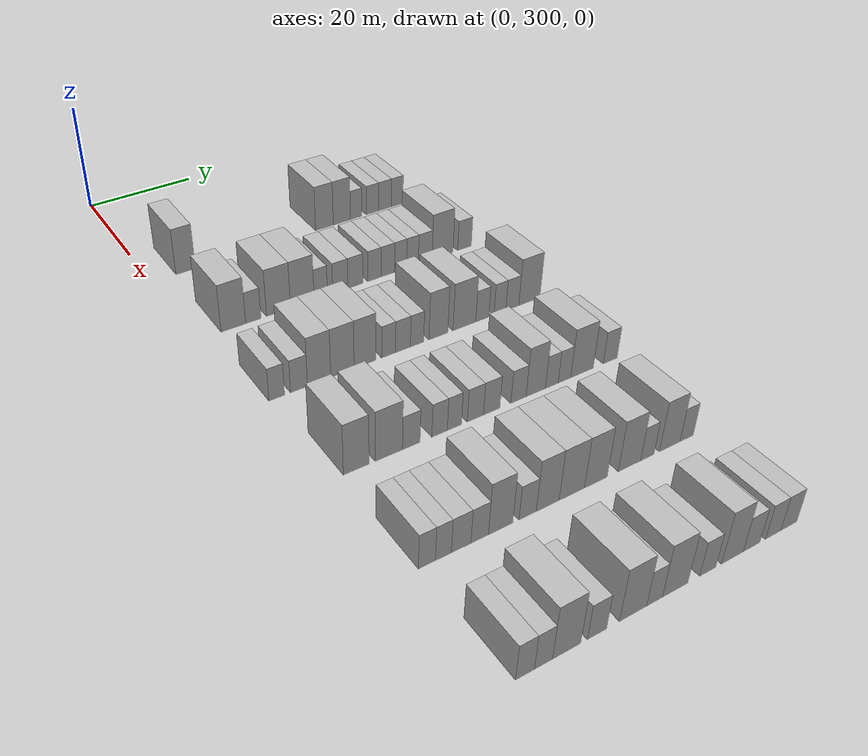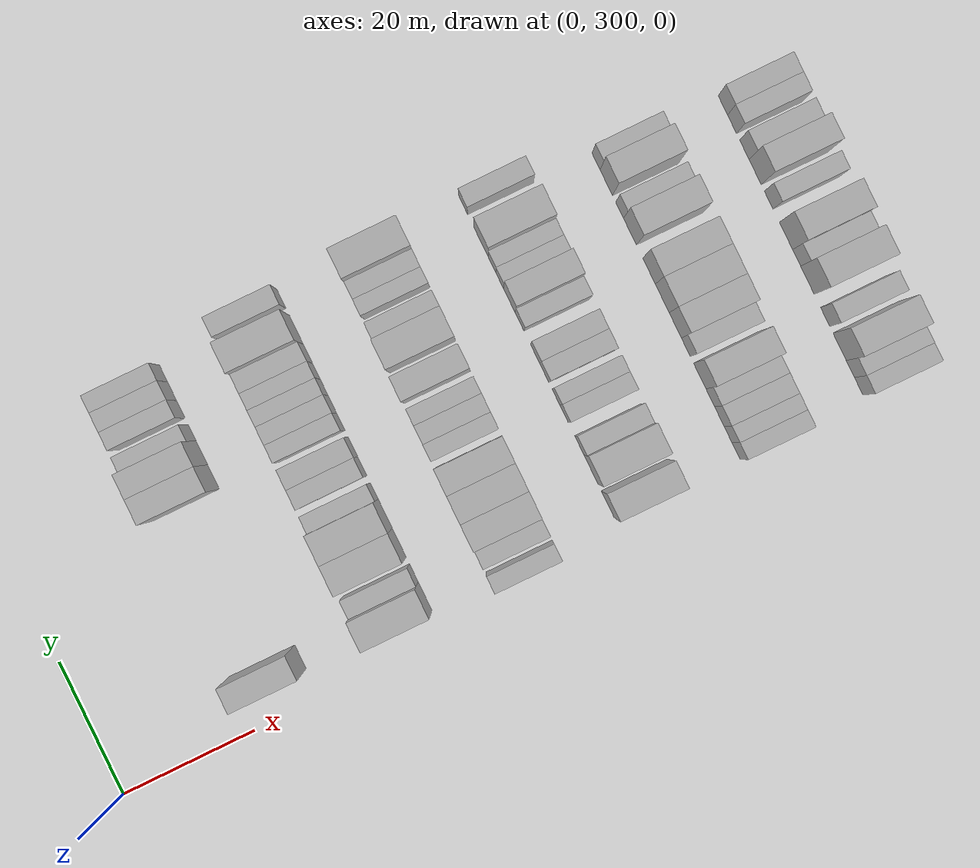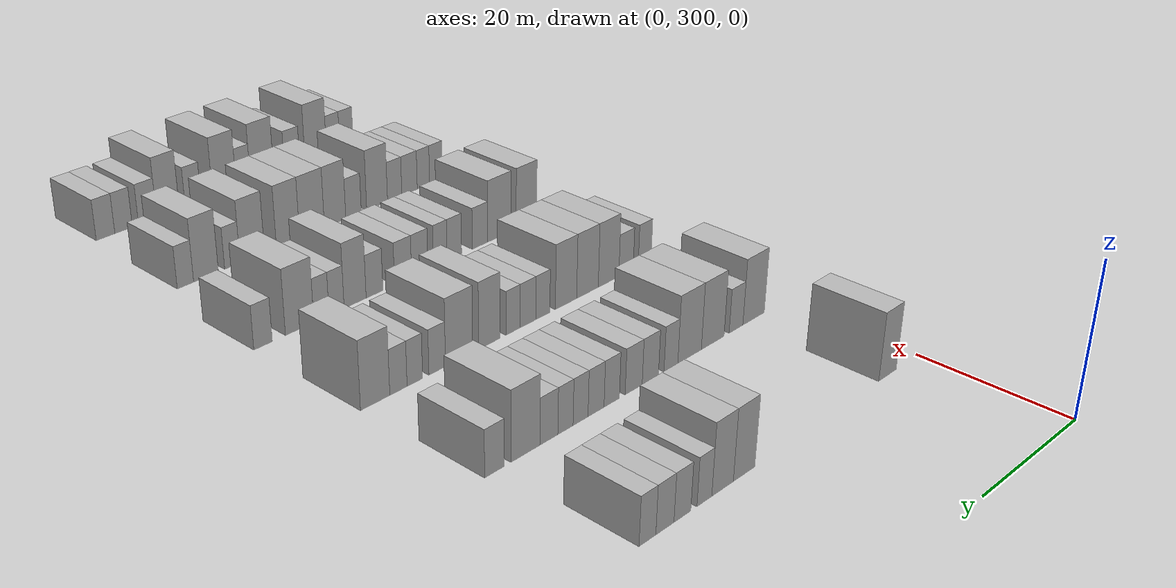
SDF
<sdf version="1.6">
 <world name="default">
  <model name="building_165">
   <static>1</static>
   <pose>25.0000 306.3633 0 0.000000 0.000000 0.000000</pose>
   <link name="link">
    <pose>0 0 4.50 0 0 0</pose>
    <collision name="collision"><geometry><box><size>10.0000 3.6433 9.0000</size></box></geometry></collision>
    <visual name="visual">
     <cast_shadows>0</cast_shadows>
     <geometry><box><size>10.0000 3.6433 9.0000</size></box></geometry>
     <material>
      <script>
       <uri>model://HANNAS_wall/materials/scripts</uri>
       <uri>model://HANNAS_wall/materials/textures</uri>
       <name>vrc/HANNAS_wall</name>
      </script>
     </material>
    </visual>
   </link>
  </model>
  <model name="building_166">
   <static>1</static>
   <pose>25.0000 333.7485 0 0.000000 0.000000 0.000000</pose>
   <link name="link">
    <pose>0 0 4.50 0 0 0</pose>
    <collision name="collision"><geometry><box><size>10.0000 3.7091 9.0000</size></box></geometry></collision>
    <visual name="visual">
     <cast_shadows>0</cast_shadows>
     <geometry><box><size>10.0000 3.7091 9.0000</size></box></geometry>
     <material>
      <script>
       <uri>model://HANNAS_wall/materials/scripts</uri>
       <uri>model://HANNAS_wall/materials/textures</uri>
       <name>vrc/HANNAS_wall</name>
      </script>
     </material>
    </visual>
   </link>
  </model>
  <model name="building_167">
   <static>1</static>
   <pose>25.0000 337.4162 0 0.000000 0.000000 0.000000</pose>
   <link name="link">
    <pose>0 0 4.50 0 0 0</pose>
    <collision name="collision"><geometry><box><size>10.0000 3.6263 9.0000</size></box></geometry></collision>
    <visual name="visual">
     <cast_shadows>0</cast_shadows>
     <geometry><box><size>10.0000 3.6263 9.0000</size></box></geometry>
     <material>
      <script>
       <uri>model://HANNAS_wall/materials/scripts</uri>
       <uri>model://HANNAS_wall/materials/textures</uri>
       <name>vrc/HANNAS_wall</name>
      </script>
     </material>
    </visual>
   </link>
  </model>
  <model name="building_168">
   <static>1</static>
   <pose>25.0000 340.4498 0 0.000000 0.000000 0.000000</pose>
   <link name="link">
    <pose>0 0 3.00 0 0 0</pose>
    <collision name="collision"><geometry><box><size>10.0000 2.4409 6.0000</size></box></geometry></collision>
    <visual name="visual">
     <cast_shadows>0</cast_shadows>
     <geometry><box><size>10.0000 2.4409 6.0000</size></box></geometry>
     <material>
      <script>
       <uri>model://HANNAS_wall/materials/scripts</uri>
       <uri>model://HANNAS_wall/materials/textures</uri>
       <name>vrc/HANNAS_wall</name>
      </script>
     </material>
    </visual>
   </link>
  </model>
  <model name="building_169">
   <static>1</static>
   <pose>25.0000 344.0160 0 0.000000 0.000000 0.000000</pose>
   <link name="link">
    <pose>0 0 3.00 0 0 0</pose>
    <collision name="collision"><geometry><box><size>10.0000 2.6914 6.0000</size></box></geometry></collision>
    <visual name="visual">
     <cast_shadows>0</cast_shadows>
     <geometry><box><size>10.0000 2.6914 6.0000</size></box></geometry>
     <material>
      <script>
       <uri>model://HANNAS_wall/materials/scripts</uri>
       <uri>model://HANNAS_wall/materials/textures</uri>
       <name>vrc/HANNAS_wall</name>
      </script>
     </material>
    </visual>
   </link>
  </model>
  <model name="building_170">
   <static>1</static>
   <pose>25.0000 346.7814 0 0.000000 0.000000 0.000000</pose>
   <link name="link">
    <pose>0 0 3.00 0 0 0</pose>
    <collision name="collision"><geometry><box><size>10.0000 2.8395 6.0000</size></box></geometry></collision>
    <visual name="visual">
     <cast_shadows>0</cast_shadows>
     <geometry><box><size>10.0000 2.8395 6.0000</size></box></geometry>
     <material>
      <script>
       <uri>model://HANNAS_wall/materials/scripts</uri>
       <uri>model://HANNAS_wall/materials/textures</uri>
       <name>vrc/HANNAS_wall</name>
      </script>
     </material>
    </visual>
   </link>
  </model>
  <model name="building_171">
   <static>1</static>
   <pose>25.0000 349.4900 0 0.000000 0.000000 0.000000</pose>
   <link name="link">
    <pose>0 0 3.00 0 0 0</pose>
    <collision name="collision"><geometry><box><size>10.0000 2.5776 6.0000</size></box></geometry></collision>
    <visual name="visual">
     <cast_shadows>0</cast_shadows>
     <geometry><box><size>10.0000 2.5776 6.0000</size></box></geometry>
     <material>
      <script>
       <uri>model://HANNAS_wall/materials/scripts</uri>
       <uri>model://HANNAS_wall/materials/textures</uri>
       <name>vrc/HANNAS_wall</name>
      </script>
     </material>
    </visual>
   </link>
  </model>
  <model name="building_330">
   <static>1</static>
   <pose>44.0000 306.4239 0 0.000000 0.000000 0.000000</pose>
   <link name="link">
    <pose>0 0 4.50 0 0 0</pose>
    <collision name="collision"><geometry><box><size>10.0000 4.3555 9.0000</size></box></geometry></collision>
    <visual name="visual">
     <cast_shadows>0</cast_shadows>
     <geometry><box><size>10.0000 4.3555 9.0000</size></box></geometry>
     <material>
      <script>
       <uri>model://HANNAS_wall/materials/scripts</uri>
       <uri>model://HANNAS_wall/materials/textures</uri>
       <name>vrc/HANNAS_wall</name>
      </script>
     </material>
    </visual>
   </link>
  </model>
  <model name="building_331">
   <static>1</static>
   <pose>44.0000 309.9692 0 0.000000 0.000000 0.000000</pose>
   <link name="link">
    <pose>0 0 3.00 0 0 0</pose>
    <collision name="collision"><geometry><box><size>10.0000 2.7350 6.0000</size></box></geometry></collision>
    <visual name="visual">
     <cast_shadows>0</cast_shadows>
     <geometry><box><size>10.0000 2.7350 6.0000</size></box></geometry>
     <material>
      <script>
       <uri>model://HANNAS_wall/materials/scripts</uri>
       <uri>model://HANNAS_wall/materials/textures</uri>
       <name>vrc/HANNAS_wall</name>
      </script>
     </material>
    </visual>
   </link>
  </model>
  <model name="building_332">
   <static>1</static>
   <pose>44.0000 314.5383 0 0.000000 0.000000 0.000000</pose>
   <link name="link">
    <pose>0 0 4.50 0 0 0</pose>
    <collision name="collision"><geometry><box><size>10.0000 4.4033 9.0000</size></box></geometry></collision>
    <visual name="visual">
     <cast_shadows>0</cast_shadows>
     <geometry><box><size>10.0000 4.4033 9.0000</size></box></geometry>
     <material>
      <script>
       <uri>model://HANNAS_wall/materials/scripts</uri>
       <uri>model://HANNAS_wall/materials/textures</uri>
       <name>vrc/HANNAS_wall</name>
      </script>
     </material>
    </visual>
   </link>
  </model>
  <model name="building_333">
   <static>1</static>
   <pose>44.0000 318.9524 0 0.000000 0.000000 0.000000</pose>
   <link name="link">
    <pose>0 0 4.50 0 0 0</pose>
    <collision name="collision"><geometry><box><size>10.0000 4.4249 9.0000</size></box></geometry></collision>
    <visual name="visual">
     <cast_shadows>0</cast_shadows>
     <geometry><box><size>10.0000 4.4249 9.0000</size></box></geometry>
     <material>
      <script>
       <uri>model://HANNAS_wall/materials/scripts</uri>
       <uri>model://HANNAS_wall/materials/textures</uri>
       <name>vrc/HANNAS_wall</name>
      </script>
     </material>
    </visual>
   </link>
  </model>
  <model name="building_334">
   <static>1</static>
   <pose>44.0000 322.4355 0 0.000000 0.000000 0.000000</pose>
   <link name="link">
    <pose>0 0 3.00 0 0 0</pose>
    <collision name="collision"><geometry><box><size>10.0000 2.5412 6.0000</size></box></geometry></collision>
    <visual name="visual">
     <cast_shadows>0</cast_shadows>
     <geometry><box><size>10.0000 2.5412 6.0000</size></box></geometry>
     <material>
      <script>
       <uri>model://HANNAS_wall/materials/scripts</uri>
       <uri>model://HANNAS_wall/materials/textures</uri>
       <name>vrc/HANNAS_wall</name>
      </script>
     </material>
    </visual>
   </link>
  </model>
  <model name="building_335">
   <static>1</static>
   <pose>44.0000 326.1646 0 0.000000 0.000000 0.000000</pose>
   <link name="link">
    <pose>0 0 3.00 0 0 0</pose>
    <collision name="collision"><geometry><box><size>10.0000 2.9170 6.0000</size></box></geometry></collision>
    <visual name="visual">
     <cast_shadows>0</cast_shadows>
     <geometry><box><size>10.0000 2.9170 6.0000</size></box></geometry>
     <material>
      <script>
       <uri>model://HANNAS_wall/materials/scripts</uri>
       <uri>model://HANNAS_wall/materials/textures</uri>
       <name>vrc/HANNAS_wall</name>
      </script>
     </material>
    </visual>
   </link>
  </model>
  <model name="building_336">
   <static>1</static>
   <pose>44.0000 329.1175 0 0.000000 0.000000 0.000000</pose>
   <link name="link">
    <pose>0 0 3.00 0 0 0</pose>
    <collision name="collision"><geometry><box><size>10.0000 2.9886 6.0000</size></box></geometry></collision>
    <visual name="visual">
     <cast_shadows>0</cast_shadows>
     <geometry><box><size>10.0000 2.9886 6.0000</size></box></geometry>
     <material>
      <script>
       <uri>model://HANNAS_wall/materials/scripts</uri>
       <uri>model://HANNAS_wall/materials/textures</uri>
       <name>vrc/HANNAS_wall</name>
      </script>
     </material>
    </visual>
   </link>
  </model>
  <model name="building_337">
   <static>1</static>
   <pose>44.0000 332.9237 0 0.000000 0.000000 0.000000</pose>
   <link name="link">
    <pose>0 0 3.00 0 0 0</pose>
    <collision name="collision"><geometry><box><size>10.0000 2.6238 6.0000</size></box></geometry></collision>
    <visual name="visual">
     <cast_shadows>0</cast_shadows>
     <geometry><box><size>10.0000 2.6238 6.0000</size></box></geometry>
     <material>
      <script>
       <uri>model://HANNAS_wall/materials/scripts</uri>
       <uri>model://HANNAS_wall/materials/textures</uri>
       <name>vrc/HANNAS_wall</name>
      </script>
     </material>
    </visual>
   </link>
  </model>
  <model name="building_338">
   <static>1</static>
   <pose>44.0000 335.5788 0 0.000000 0.000000 0.000000</pose>
   <link name="link">
    <pose>0 0 3.00 0 0 0</pose>
    <collision name="collision"><geometry><box><size>10.0000 2.6865 6.0000</size></box></geometry></collision>
    <visual name="visual">
     <cast_shadows>0</cast_shadows>
     <geometry><box><size>10.0000 2.6865 6.0000</size></box></geometry>
     <material>
      <script>
       <uri>model://HANNAS_wall/materials/scripts</uri>
       <uri>model://HANNAS_wall/materials/textures</uri>
       <name>vrc/HANNAS_wall</name>
      </script>
     </material>
    </visual>
   </link>
  </model>
  <model name="building_339">
   <static>1</static>
   <pose>44.0000 338.1555 0 0.000000 0.000000 0.000000</pose>
   <link name="link">
    <pose>0 0 3.00 0 0 0</pose>
    <collision name="collision"><geometry><box><size>10.0000 2.4669 6.0000</size></box></geometry></collision>
    <visual name="visual">
     <cast_shadows>0</cast_shadows>
     <geometry><box><size>10.0000 2.4669 6.0000</size></box></geometry>
     <material>
      <script>
       <uri>model://HANNAS_wall/materials/scripts</uri>
       <uri>model://HANNAS_wall/materials/textures</uri>
       <name>vrc/HANNAS_wall</name>
      </script>
     </material>
    </visual>
   </link>
  </model>
  <model name="building_340">
   <static>1</static>
   <pose>44.0000 340.6199 0 0.000000 0.000000 0.000000</pose>
   <link name="link">
    <pose>0 0 3.00 0 0 0</pose>
    <collision name="collision"><geometry><box><size>10.0000 2.4621 6.0000</size></box></geometry></collision>
    <visual name="visual">
     <cast_shadows>0</cast_shadows>
     <geometry><box><size>10.0000 2.4621 6.0000</size></box></geometry>
     <material>
      <script>
       <uri>model://HANNAS_wall/materials/scripts</uri>
       <uri>model://HANNAS_wall/materials/textures</uri>
       <name>vrc/HANNAS_wall</name>
      </script>
     </material>
    </visual>
   </link>
  </model>
  <model name="building_341">
   <static>1</static>
   <pose>44.0000 343.2810 0 0.000000 0.000000 0.000000</pose>
   <link name="link">
    <pose>0 0 3.00 0 0 0</pose>
    <collision name="collision"><geometry><box><size>10.0000 2.8601 6.0000</size></box></geometry></collision>
    <visual name="visual">
     <cast_shadows>0</cast_shadows>
     <geometry><box><size>10.0000 2.8601 6.0000</size></box></geometry>
     <material>
      <script>
       <uri>model://HANNAS_wall/materials/scripts</uri>
       <uri>model://HANNAS_wall/materials/textures</uri>
       <name>vrc/HANNAS_wall</name>
      </script>
     </material>
    </visual>
   </link>
  </model>
  <model name="building_342">
   <static>1</static>
   <pose>44.0000 346.9430 0 0.000000 0.000000 0.000000</pose>
   <link name="link">
    <pose>0 0 4.50 0 0 0</pose>
    <collision name="collision"><geometry><box><size>10.0000 4.4638 9.0000</size></box></geometry></collision>
    <visual name="visual">
     <cast_shadows>0</cast_shadows>
     <geometry><box><size>10.0000 4.4638 9.0000</size></box></geometry>
     <material>
      <script>
       <uri>model://HANNAS_wall/materials/scripts</uri>
       <uri>model://HANNAS_wall/materials/textures</uri>
       <name>vrc/HANNAS_wall</name>
      </script>
     </material>
    </visual>
   </link>
  </model>
  <model name="building_343">
   <static>1</static>
   <pose>44.0000 351.6496 0 0.000000 0.000000 0.000000</pose>
   <link name="link">
    <pose>0 0 3.00 0 0 0</pose>
    <collision name="collision"><geometry><box><size>10.0000 2.9493 6.0000</size></box></geometry></collision>
    <visual name="visual">
     <cast_shadows>0</cast_shadows>
     <geometry><box><size>10.0000 2.9493 6.0000</size></box></geometry>
     <material>
      <script>
       <uri>model://HANNAS_wall/materials/scripts</uri>
       <uri>model://HANNAS_wall/materials/textures</uri>
       <name>vrc/HANNAS_wall</name>
      </script>
     </material>
    </visual>
   </link>
  </model>
  <model name="building_497">
   <static>1</static>
   <pose>63.0000 304.4570 0 0.000000 0.000000 0.000000</pose>
   <link name="link">
    <pose>0 0 3.00 0 0 0</pose>
    <collision name="collision"><geometry><box><size>10.0000 2.5970 6.0000</size></box></geometry></collision>
    <visual name="visual">
     <cast_shadows>0</cast_shadows>
     <geometry><box><size>10.0000 2.5970 6.0000</size></box></geometry>
     <material>
      <script>
       <uri>model://HANNAS_wall/materials/scripts</uri>
       <uri>model://HANNAS_wall/materials/textures</uri>
       <name>vrc/HANNAS_wall</name>
      </script>
     </material>
    </visual>
   </link>
  </model>
  <model name="building_498">
   <static>1</static>
   <pose>63.0000 308.1817 0 0.000000 0.000000 0.000000</pose>
   <link name="link">
    <pose>0 0 3.00 0 0 0</pose>
    <collision name="collision"><geometry><box><size>10.0000 2.8524 6.0000</size></box></geometry></collision>
    <visual name="visual">
     <cast_shadows>0</cast_shadows>
     <geometry><box><size>10.0000 2.8524 6.0000</size></box></geometry>
     <material>
      <script>
       <uri>model://HANNAS_wall/materials/scripts</uri>
       <uri>model://HANNAS_wall/materials/textures</uri>
       <name>vrc/HANNAS_wall</name>
      </script>
     </material>
    </visual>
   </link>
  </model>
  <model name="building_499">
   <static>1</static>
   <pose>63.0000 311.6043 0 0.000000 0.000000 0.000000</pose>
   <link name="link">
    <pose>0 0 4.50 0 0 0</pose>
    <collision name="collision"><geometry><box><size>10.0000 3.9929 9.0000</size></box></geometry></collision>
    <visual name="visual">
     <cast_shadows>0</cast_shadows>
     <geometry><box><size>10.0000 3.9929 9.0000</size></box></geometry>
     <material>
      <script>
       <uri>model://HANNAS_wall/materials/scripts</uri>
       <uri>model://HANNAS_wall/materials/textures</uri>
       <name>vrc/HANNAS_wall</name>
      </script>
     </material>
    </visual>
   </link>
  </model>
  <model name="building_500">
   <static>1</static>
   <pose>63.0000 315.6555 0 0.000000 0.000000 0.000000</pose>
   <link name="link">
    <pose>0 0 4.50 0 0 0</pose>
    <collision name="collision"><geometry><box><size>10.0000 4.1095 9.0000</size></box></geometry></collision>
    <visual name="visual">
     <cast_shadows>0</cast_shadows>
     <geometry><box><size>10.0000 4.1095 9.0000</size></box></geometry>
     <material>
      <script>
       <uri>model://HANNAS_wall/materials/scripts</uri>
       <uri>model://HANNAS_wall/materials/textures</uri>
       <name>vrc/HANNAS_wall</name>
      </script>
     </material>
    </visual>
   </link>
  </model>
  <model name="building_501">
   <static>1</static>
   <pose>63.0000 319.6765 0 0.000000 0.000000 0.000000</pose>
   <link name="link">
    <pose>0 0 4.50 0 0 0</pose>
    <collision name="collision"><geometry><box><size>10.0000 3.9324 9.0000</size></box></geometry></collision>
    <visual name="visual">
     <cast_shadows>0</cast_shadows>
     <geometry><box><size>10.0000 3.9324 9.0000</size></box></geometry>
     <material>
      <script>
       <uri>model://HANNAS_wall/materials/scripts</uri>
       <uri>model://HANNAS_wall/materials/textures</uri>
       <name>vrc/HANNAS_wall</name>
      </script>
     </material>
    </visual>
   </link>
  </model>
  <model name="building_502">
   <static>1</static>
   <pose>63.0000 323.9068 0 0.000000 0.000000 0.000000</pose>
   <link name="link">
    <pose>0 0 3.00 0 0 0</pose>
    <collision name="collision"><geometry><box><size>10.0000 2.5282 6.0000</size></box></geometry></collision>
    <visual name="visual">
     <cast_shadows>0</cast_shadows>
     <geometry><box><size>10.0000 2.5282 6.0000</size></box></geometry>
     <material>
      <script>
       <uri>model://HANNAS_wall/materials/scripts</uri>
       <uri>model://HANNAS_wall/materials/textures</uri>
       <name>vrc/HANNAS_wall</name>
      </script>
     </material>
    </visual>
   </link>
  </model>
  <model name="building_503">
   <static>1</static>
   <pose>63.0000 326.5511 0 0.000000 0.000000 0.000000</pose>
   <link name="link">
    <pose>0 0 3.00 0 0 0</pose>
    <collision name="collision"><geometry><box><size>10.0000 2.7604 6.0000</size></box></geometry></collision>
    <visual name="visual">
     <cast_shadows>0</cast_shadows>
     <geometry><box><size>10.0000 2.7604 6.0000</size></box></geometry>
     <material>
      <script>
       <uri>model://HANNAS_wall/materials/scripts</uri>
       <uri>model://HANNAS_wall/materials/textures</uri>
       <name>vrc/HANNAS_wall</name>
      </script>
     </material>
    </visual>
   </link>
  </model>
  <model name="building_504">
   <static>1</static>
   <pose>63.0000 329.1731 0 0.000000 0.000000 0.000000</pose>
   <link name="link">
    <pose>0 0 3.00 0 0 0</pose>
    <collision name="collision"><geometry><box><size>10.0000 2.4837 6.0000</size></box></geometry></collision>
    <visual name="visual">
     <cast_shadows>0</cast_shadows>
     <geometry><box><size>10.0000 2.4837 6.0000</size></box></geometry>
     <material>
      <script>
       <uri>model://HANNAS_wall/materials/scripts</uri>
       <uri>model://HANNAS_wall/materials/textures</uri>
       <name>vrc/HANNAS_wall</name>
      </script>
     </material>
    </visual>
   </link>
  </model>
  <model name="building_505">
   <static>1</static>
   <pose>63.0000 333.2251 0 0.000000 0.000000 0.000000</pose>
   <link name="link">
    <pose>0 0 4.50 0 0 0</pose>
    <collision name="collision"><geometry><box><size>10.0000 3.6203 9.0000</size></box></geometry></collision>
    <visual name="visual">
     <cast_shadows>0</cast_shadows>
     <geometry><box><size>10.0000 3.6203 9.0000</size></box></geometry>
     <material>
      <script>
       <uri>model://HANNAS_wall/materials/scripts</uri>
       <uri>model://HANNAS_wall/materials/textures</uri>
       <name>vrc/HANNAS_wall</name>
      </script>
     </material>
    </visual>
   </link>
  </model>
  <model name="building_506">
   <static>1</static>
   <pose>63.0000 338.2639 0 0.000000 0.000000 0.000000</pose>
   <link name="link">
    <pose>0 0 4.50 0 0 0</pose>
    <collision name="collision"><geometry><box><size>10.0000 4.4573 9.0000</size></box></geometry></collision>
    <visual name="visual">
     <cast_shadows>0</cast_shadows>
     <geometry><box><size>10.0000 4.4573 9.0000</size></box></geometry>
     <material>
      <script>
       <uri>model://HANNAS_wall/materials/scripts</uri>
       <uri>model://HANNAS_wall/materials/textures</uri>
       <name>vrc/HANNAS_wall</name>
      </script>
     </material>
    </visual>
   </link>
  </model>
  <model name="building_507">
   <static>1</static>
   <pose>63.0000 341.8162 0 0.000000 0.000000 0.000000</pose>
   <link name="link">
    <pose>0 0 3.00 0 0 0</pose>
    <collision name="collision"><geometry><box><size>10.0000 2.6474 6.0000</size></box></geometry></collision>
    <visual name="visual">
     <cast_shadows>0</cast_shadows>
     <geometry><box><size>10.0000 2.6474 6.0000</size></box></geometry>
     <material>
      <script>
       <uri>model://HANNAS_wall/materials/scripts</uri>
       <uri>model://HANNAS_wall/materials/textures</uri>
       <name>vrc/HANNAS_wall</name>
      </script>
     </material>
    </visual>
   </link>
  </model>
  <model name="building_508">
   <static>1</static>
   <pose>63.0000 345.3541 0 0.000000 0.000000 0.000000</pose>
   <link name="link">
    <pose>0 0 3.00 0 0 0</pose>
    <collision name="collision"><geometry><box><size>10.0000 2.4283 6.0000</size></box></geometry></collision>
    <visual name="visual">
     <cast_shadows>0</cast_shadows>
     <geometry><box><size>10.0000 2.4283 6.0000</size></box></geometry>
     <material>
      <script>
       <uri>model://HANNAS_wall/materials/scripts</uri>
       <uri>model://HANNAS_wall/materials/textures</uri>
       <name>vrc/HANNAS_wall</name>
      </script>
     </material>
    </visual>
   </link>
  </model>
  <model name="building_509">
   <static>1</static>
   <pose>63.0000 347.8929 0 0.000000 0.000000 0.000000</pose>
   <link name="link">
    <pose>0 0 3.00 0 0 0</pose>
    <collision name="collision"><geometry><box><size>10.0000 2.6493 6.0000</size></box></geometry></collision>
    <visual name="visual">
     <cast_shadows>0</cast_shadows>
     <geometry><box><size>10.0000 2.6493 6.0000</size></box></geometry>
     <material>
      <script>
       <uri>model://HANNAS_wall/materials/scripts</uri>
       <uri>model://HANNAS_wall/materials/textures</uri>
       <name>vrc/HANNAS_wall</name>
      </script>
     </material>
    </visual>
   </link>
  </model>
  <model name="building_510">
   <static>1</static>
   <pose>63.0000 351.4147 0 0.000000 0.000000 0.000000</pose>
   <link name="link">
    <pose>0 0 4.50 0 0 0</pose>
    <collision name="collision"><geometry><box><size>10.0000 4.3943 9.0000</size></box></geometry></collision>
    <visual name="visual">
     <cast_shadows>0</cast_shadows>
     <geometry><box><size>10.0000 4.3943 9.0000</size></box></geometry>
     <material>
      <script>
       <uri>model://HANNAS_wall/materials/scripts</uri>
       <uri>model://HANNAS_wall/materials/textures</uri>
       <name>vrc/HANNAS_wall</name>
      </script>
     </material>
    </visual>
   </link>
  </model>
  <model name="building_664">
   <static>1</static>
   <pose>82.0000 306.8627 0 0.000000 0.000000 0.000000</pose>
   <link name="link">
    <pose>0 0 4.50 0 0 0</pose>
    <collision name="collision"><geometry><box><size>10.0000 4.0574 9.0000</size></box></geometry></collision>
    <visual name="visual">
     <cast_shadows>0</cast_shadows>
     <geometry><box><size>10.0000 4.0574 9.0000</size></box></geometry>
     <material>
      <script>
       <uri>model://HANNAS_wall/materials/scripts</uri>
       <uri>model://HANNAS_wall/materials/textures</uri>
       <name>vrc/HANNAS_wall</name>
      </script>
     </material>
    </visual>
   </link>
  </model>
  <model name="building_665">
   <static>1</static>
   <pose>82.0000 312.1245 0 0.000000 0.000000 0.000000</pose>
   <link name="link">
    <pose>0 0 4.50 0 0 0</pose>
    <collision name="collision"><geometry><box><size>10.0000 4.4663 9.0000</size></box></geometry></collision>
    <visual name="visual">
     <cast_shadows>0</cast_shadows>
     <geometry><box><size>10.0000 4.4663 9.0000</size></box></geometry>
     <material>
      <script>
       <uri>model://HANNAS_wall/materials/scripts</uri>
       <uri>model://HANNAS_wall/materials/textures</uri>
       <name>vrc/HANNAS_wall</name>
      </script>
     </material>
    </visual>
   </link>
  </model>
  <model name="building_666">
   <static>1</static>
   <pose>82.0000 315.8169 0 0.000000 0.000000 0.000000</pose>
   <link name="link">
    <pose>0 0 3.00 0 0 0</pose>
    <collision name="collision"><geometry><box><size>10.0000 2.9184 6.0000</size></box></geometry></collision>
    <visual name="visual">
     <cast_shadows>0</cast_shadows>
     <geometry><box><size>10.0000 2.9184 6.0000</size></box></geometry>
     <material>
      <script>
       <uri>model://HANNAS_wall/materials/scripts</uri>
       <uri>model://HANNAS_wall/materials/textures</uri>
       <name>vrc/HANNAS_wall</name>
      </script>
     </material>
    </visual>
   </link>
  </model>
  <model name="building_667">
   <static>1</static>
   <pose>82.0000 320.5972 0 0.000000 0.000000 0.000000</pose>
   <link name="link">
    <pose>0 0 3.00 0 0 0</pose>
    <collision name="collision"><geometry><box><size>10.0000 2.6423 6.0000</size></box></geometry></collision>
    <visual name="visual">
     <cast_shadows>0</cast_shadows>
     <geometry><box><size>10.0000 2.6423 6.0000</size></box></geometry>
     <material>
      <script>
       <uri>model://HANNAS_wall/materials/scripts</uri>
       <uri>model://HANNAS_wall/materials/textures</uri>
       <name>vrc/HANNAS_wall</name>
      </script>
     </material>
    </visual>
   </link>
  </model>
  <model name="building_668">
   <static>1</static>
   <pose>82.0000 323.1475 0 0.000000 0.000000 0.000000</pose>
   <link name="link">
    <pose>0 0 3.00 0 0 0</pose>
    <collision name="collision"><geometry><box><size>10.0000 2.4583 6.0000</size></box></geometry></collision>
    <visual name="visual">
     <cast_shadows>0</cast_shadows>
     <geometry><box><size>10.0000 2.4583 6.0000</size></box></geometry>
     <material>
      <script>
       <uri>model://HANNAS_wall/materials/scripts</uri>
       <uri>model://HANNAS_wall/materials/textures</uri>
       <name>vrc/HANNAS_wall</name>
      </script>
     </material>
    </visual>
   </link>
  </model>
  <model name="building_669">
   <static>1</static>
   <pose>82.0000 326.8144 0 0.000000 0.000000 0.000000</pose>
   <link name="link">
    <pose>0 0 3.00 0 0 0</pose>
    <collision name="collision"><geometry><box><size>10.0000 2.8755 6.0000</size></box></geometry></collision>
    <visual name="visual">
     <cast_shadows>0</cast_shadows>
     <geometry><box><size>10.0000 2.8755 6.0000</size></box></geometry>
     <material>
      <script>
       <uri>model://HANNAS_wall/materials/scripts</uri>
       <uri>model://HANNAS_wall/materials/textures</uri>
       <name>vrc/HANNAS_wall</name>
      </script>
     </material>
    </visual>
   </link>
  </model>
  <model name="building_670">
   <static>1</static>
   <pose>82.0000 329.7268 0 0.000000 0.000000 0.000000</pose>
   <link name="link">
    <pose>0 0 3.00 0 0 0</pose>
    <collision name="collision"><geometry><box><size>10.0000 2.9493 6.0000</size></box></geometry></collision>
    <visual name="visual">
     <cast_shadows>0</cast_shadows>
     <geometry><box><size>10.0000 2.9493 6.0000</size></box></geometry>
     <material>
      <script>
       <uri>model://HANNAS_wall/materials/scripts</uri>
       <uri>model://HANNAS_wall/materials/textures</uri>
       <name>vrc/HANNAS_wall</name>
      </script>
     </material>
    </visual>
   </link>
  </model>
  <model name="building_671">
   <static>1</static>
   <pose>82.0000 334.6068 0 0.000000 0.000000 0.000000</pose>
   <link name="link">
    <pose>0 0 3.00 0 0 0</pose>
    <collision name="collision"><geometry><box><size>10.0000 2.8106 6.0000</size></box></geometry></collision>
    <visual name="visual">
     <cast_shadows>0</cast_shadows>
     <geometry><box><size>10.0000 2.8106 6.0000</size></box></geometry>
     <material>
      <script>
       <uri>model://HANNAS_wall/materials/scripts</uri>
       <uri>model://HANNAS_wall/materials/textures</uri>
       <name>vrc/HANNAS_wall</name>
      </script>
     </material>
    </visual>
   </link>
  </model>
  <model name="building_672">
   <static>1</static>
   <pose>82.0000 337.8264 0 0.000000 0.000000 0.000000</pose>
   <link name="link">
    <pose>0 0 4.50 0 0 0</pose>
    <collision name="collision"><geometry><box><size>10.0000 3.6287 9.0000</size></box></geometry></collision>
    <visual name="visual">
     <cast_shadows>0</cast_shadows>
     <geometry><box><size>10.0000 3.6287 9.0000</size></box></geometry>
     <material>
      <script>
       <uri>model://HANNAS_wall/materials/scripts</uri>
       <uri>model://HANNAS_wall/materials/textures</uri>
       <name>vrc/HANNAS_wall</name>
      </script>
     </material>
    </visual>
   </link>
  </model>
  <model name="building_673">
   <static>1</static>
   <pose>82.0000 340.8580 0 0.000000 0.000000 0.000000</pose>
   <link name="link">
    <pose>0 0 3.00 0 0 0</pose>
    <collision name="collision"><geometry><box><size>10.0000 2.4344 6.0000</size></box></geometry></collision>
    <visual name="visual">
     <cast_shadows>0</cast_shadows>
     <geometry><box><size>10.0000 2.4344 6.0000</size></box></geometry>
     <material>
      <script>
       <uri>model://HANNAS_wall/materials/scripts</uri>
       <uri>model://HANNAS_wall/materials/textures</uri>
       <name>vrc/HANNAS_wall</name>
      </script>
     </material>
    </visual>
   </link>
  </model>
  <model name="building_674">
   <static>1</static>
   <pose>82.0000 343.2876 0 0.000000 0.000000 0.000000</pose>
   <link name="link">
    <pose>0 0 3.00 0 0 0</pose>
    <collision name="collision"><geometry><box><size>10.0000 2.4248 6.0000</size></box></geometry></collision>
    <visual name="visual">
     <cast_shadows>0</cast_shadows>
     <geometry><box><size>10.0000 2.4248 6.0000</size></box></geometry>
     <material>
      <script>
       <uri>model://HANNAS_wall/materials/scripts</uri>
       <uri>model://HANNAS_wall/materials/textures</uri>
       <name>vrc/HANNAS_wall</name>
      </script>
     </material>
    </visual>
   </link>
  </model>
  <model name="building_675">
   <static>1</static>
   <pose>82.0000 346.7132 0 0.000000 0.000000 0.000000</pose>
   <link name="link">
    <pose>0 0 4.50 0 0 0</pose>
    <collision name="collision"><geometry><box><size>10.0000 4.4263 9.0000</size></box></geometry></collision>
    <visual name="visual">
     <cast_shadows>0</cast_shadows>
     <geometry><box><size>10.0000 4.4263 9.0000</size></box></geometry>
     <material>
      <script>
       <uri>model://HANNAS_wall/materials/scripts</uri>
       <uri>model://HANNAS_wall/materials/textures</uri>
       <name>vrc/HANNAS_wall</name>
      </script>
     </material>
    </visual>
   </link>
  </model>
  <model name="building_676">
   <static>1</static>
   <pose>82.0000 352.3153 0 0.000000 0.000000 0.000000</pose>
   <link name="link">
    <pose>0 0 3.00 0 0 0</pose>
    <collision name="collision"><geometry><box><size>10.0000 2.7778 6.0000</size></box></geometry></collision>
    <visual name="visual">
     <cast_shadows>0</cast_shadows>
     <geometry><box><size>10.0000 2.7778 6.0000</size></box></geometry>
     <material>
      <script>
       <uri>model://HANNAS_wall/materials/scripts</uri>
       <uri>model://HANNAS_wall/materials/textures</uri>
       <name>vrc/HANNAS_wall</name>
      </script>
     </material>
    </visual>
   </link>
  </model>
  <model name="building_841">
   <static>1</static>
   <pose>101.0000 305.8369 0 0.000000 0.000000 0.000000</pose>
   <link name="link">
    <pose>0 0 3.00 0 0 0</pose>
    <collision name="collision"><geometry><box><size>10.0000 2.5415 6.0000</size></box></geometry></collision>
    <visual name="visual">
     <cast_shadows>0</cast_shadows>
     <geometry><box><size>10.0000 2.5415 6.0000</size></box></geometry>
     <material>
      <script>
       <uri>model://HANNAS_wall/materials/scripts</uri>
       <uri>model://HANNAS_wall/materials/textures</uri>
       <name>vrc/HANNAS_wall</name>
      </script>
     </material>
    </visual>
   </link>
  </model>
  <model name="building_842">
   <static>1</static>
   <pose>101.0000 308.3217 0 0.000000 0.000000 0.000000</pose>
   <link name="link">
    <pose>0 0 3.00 0 0 0</pose>
    <collision name="collision"><geometry><box><size>10.0000 2.4281 6.0000</size></box></geometry></collision>
    <visual name="visual">
     <cast_shadows>0</cast_shadows>
     <geometry><box><size>10.0000 2.4281 6.0000</size></box></geometry>
     <material>
      <script>
       <uri>model://HANNAS_wall/materials/scripts</uri>
       <uri>model://HANNAS_wall/materials/textures</uri>
       <name>vrc/HANNAS_wall</name>
      </script>
     </material>
    </visual>
   </link>
  </model>
  <model name="building_843">
   <static>1</static>
   <pose>101.0000 311.0310 0 0.000000 0.000000 0.000000</pose>
   <link name="link">
    <pose>0 0 3.00 0 0 0</pose>
    <collision name="collision"><geometry><box><size>10.0000 2.9906 6.0000</size></box></geometry></collision>
    <visual name="visual">
     <cast_shadows>0</cast_shadows>
     <geometry><box><size>10.0000 2.9906 6.0000</size></box></geometry>
     <material>
      <script>
       <uri>model://HANNAS_wall/materials/scripts</uri>
       <uri>model://HANNAS_wall/materials/textures</uri>
       <name>vrc/HANNAS_wall</name>
      </script>
     </material>
    </visual>
   </link>
  </model>
  <model name="building_844">
   <static>1</static>
   <pose>101.0000 313.8902 0 0.000000 0.000000 0.000000</pose>
   <link name="link">
    <pose>0 0 3.00 0 0 0</pose>
    <collision name="collision"><geometry><box><size>10.0000 2.7279 6.0000</size></box></geometry></collision>
    <visual name="visual">
     <cast_shadows>0</cast_shadows>
     <geometry><box><size>10.0000 2.7279 6.0000</size></box></geometry>
     <material>
      <script>
       <uri>model://HANNAS_wall/materials/scripts</uri>
       <uri>model://HANNAS_wall/materials/textures</uri>
       <name>vrc/HANNAS_wall</name>
      </script>
     </material>
    </visual>
   </link>
  </model>
  <model name="building_845">
   <static>1</static>
   <pose>101.0000 317.2026 0 0.000000 0.000000 0.000000</pose>
   <link name="link">
    <pose>0 0 4.50 0 0 0</pose>
    <collision name="collision"><geometry><box><size>10.0000 3.8970 9.0000</size></box></geometry></collision>
    <visual name="visual">
     <cast_shadows>0</cast_shadows>
     <geometry><box><size>10.0000 3.8970 9.0000</size></box></geometry>
     <material>
      <script>
       <uri>model://HANNAS_wall/materials/scripts</uri>
       <uri>model://HANNAS_wall/materials/textures</uri>
       <name>vrc/HANNAS_wall</name>
      </script>
     </material>
    </visual>
   </link>
  </model>
  <model name="building_846">
   <static>1</static>
   <pose>101.0000 321.5633 0 0.000000 0.000000 0.000000</pose>
   <link name="link">
    <pose>0 0 3.00 0 0 0</pose>
    <collision name="collision"><geometry><box><size>10.0000 2.8243 6.0000</size></box></geometry></collision>
    <visual name="visual">
     <cast_shadows>0</cast_shadows>
     <geometry><box><size>10.0000 2.8243 6.0000</size></box></geometry>
     <material>
      <script>
       <uri>model://HANNAS_wall/materials/scripts</uri>
       <uri>model://HANNAS_wall/materials/textures</uri>
       <name>vrc/HANNAS_wall</name>
      </script>
     </material>
    </visual>
   </link>
  </model>
  <model name="building_847">
   <static>1</static>
   <pose>101.0000 324.8883 0 0.000000 0.000000 0.000000</pose>
   <link name="link">
    <pose>0 0 4.50 0 0 0</pose>
    <collision name="collision"><geometry><box><size>10.0000 3.8258 9.0000</size></box></geometry></collision>
    <visual name="visual">
     <cast_shadows>0</cast_shadows>
     <geometry><box><size>10.0000 3.8258 9.0000</size></box></geometry>
     <material>
      <script>
       <uri>model://HANNAS_wall/materials/scripts</uri>
       <uri>model://HANNAS_wall/materials/textures</uri>
       <name>vrc/HANNAS_wall</name>
      </script>
     </material>
    </visual>
   </link>
  </model>
  <model name="building_848">
   <static>1</static>
   <pose>101.0000 328.9722 0 0.000000 0.000000 0.000000</pose>
   <link name="link">
    <pose>0 0 4.50 0 0 0</pose>
    <collision name="collision"><geometry><box><size>10.0000 4.3421 9.0000</size></box></geometry></collision>
    <visual name="visual">
     <cast_shadows>0</cast_shadows>
     <geometry><box><size>10.0000 4.3421 9.0000</size></box></geometry>
     <material>
      <script>
       <uri>model://HANNAS_wall/materials/scripts</uri>
       <uri>model://HANNAS_wall/materials/textures</uri>
       <name>vrc/HANNAS_wall</name>
      </script>
     </material>
    </visual>
   </link>
  </model>
  <model name="building_849">
   <static>1</static>
   <pose>101.0000 333.1299 0 0.000000 0.000000 0.000000</pose>
   <link name="link">
    <pose>0 0 4.50 0 0 0</pose>
    <collision name="collision"><geometry><box><size>10.0000 3.9732 9.0000</size></box></geometry></collision>
    <visual name="visual">
     <cast_shadows>0</cast_shadows>
     <geometry><box><size>10.0000 3.9732 9.0000</size></box></geometry>
     <material>
      <script>
       <uri>model://HANNAS_wall/materials/scripts</uri>
       <uri>model://HANNAS_wall/materials/textures</uri>
       <name>vrc/HANNAS_wall</name>
      </script>
     </material>
    </visual>
   </link>
  </model>
  <model name="building_850">
   <static>1</static>
   <pose>101.0000 339.1317 0 0.000000 0.000000 0.000000</pose>
   <link name="link">
    <pose>0 0 4.50 0 0 0</pose>
    <collision name="collision"><geometry><box><size>10.0000 4.0305 9.0000</size></box></geometry></collision>
    <visual name="visual">
     <cast_shadows>0</cast_shadows>
     <geometry><box><size>10.0000 4.0305 9.0000</size></box></geometry>
     <material>
      <script>
       <uri>model://HANNAS_wall/materials/scripts</uri>
       <uri>model://HANNAS_wall/materials/textures</uri>
       <name>vrc/HANNAS_wall</name>
      </script>
     </material>
    </visual>
   </link>
  </model>
  <model name="building_851">
   <static>1</static>
   <pose>101.0000 342.3911 0 0.000000 0.000000 0.000000</pose>
   <link name="link">
    <pose>0 0 3.00 0 0 0</pose>
    <collision name="collision"><geometry><box><size>10.0000 2.4882 6.0000</size></box></geometry></collision>
    <visual name="visual">
     <cast_shadows>0</cast_shadows>
     <geometry><box><size>10.0000 2.4882 6.0000</size></box></geometry>
     <material>
      <script>
       <uri>model://HANNAS_wall/materials/scripts</uri>
       <uri>model://HANNAS_wall/materials/textures</uri>
       <name>vrc/HANNAS_wall</name>
      </script>
     </material>
    </visual>
   </link>
  </model>
  <model name="building_852">
   <static>1</static>
   <pose>101.0000 346.5861 0 0.000000 0.000000 0.000000</pose>
   <link name="link">
    <pose>0 0 4.50 0 0 0</pose>
    <collision name="collision"><geometry><box><size>10.0000 3.9017 9.0000</size></box></geometry></collision>
    <visual name="visual">
     <cast_shadows>0</cast_shadows>
     <geometry><box><size>10.0000 3.9017 9.0000</size></box></geometry>
     <material>
      <script>
       <uri>model://HANNAS_wall/materials/scripts</uri>
       <uri>model://HANNAS_wall/materials/textures</uri>
       <name>vrc/HANNAS_wall</name>
      </script>
     </material>
    </visual>
   </link>
  </model>
  <model name="building_853">
   <static>1</static>
   <pose>101.0000 349.8041 0 0.000000 0.000000 0.000000</pose>
   <link name="link">
    <pose>0 0 3.00 0 0 0</pose>
    <collision name="collision"><geometry><box><size>10.0000 2.5344 6.0000</size></box></geometry></collision>
    <visual name="visual">
     <cast_shadows>0</cast_shadows>
     <geometry><box><size>10.0000 2.5344 6.0000</size></box></geometry>
     <material>
      <script>
       <uri>model://HANNAS_wall/materials/scripts</uri>
       <uri>model://HANNAS_wall/materials/textures</uri>
       <name>vrc/HANNAS_wall</name>
      </script>
     </material>
    </visual>
   </link>
  </model>
  <model name="building_1014">
   <static>1</static>
   <pose>120.0000 306.4556 0 0.000000 0.000000 0.000000</pose>
   <link name="link">
    <pose>0 0 3.00 0 0 0</pose>
    <collision name="collision"><geometry><box><size>10.0000 2.6755 6.0000</size></box></geometry></collision>
    <visual name="visual">
     <cast_shadows>0</cast_shadows>
     <geometry><box><size>10.0000 2.6755 6.0000</size></box></geometry>
     <material>
      <script>
       <uri>model://HANNAS_wall/materials/scripts</uri>
       <uri>model://HANNAS_wall/materials/textures</uri>
       <name>vrc/HANNAS_wall</name>
      </script>
     </material>
    </visual>
   </link>
  </model>
  <model name="building_1015">
   <static>1</static>
   <pose>120.0000 309.0896 0 0.000000 0.000000 0.000000</pose>
   <link name="link">
    <pose>0 0 3.00 0 0 0</pose>
    <collision name="collision"><geometry><box><size>10.0000 2.5925 6.0000</size></box></geometry></collision>
    <visual name="visual">
     <cast_shadows>0</cast_shadows>
     <geometry><box><size>10.0000 2.5925 6.0000</size></box></geometry>
     <material>
      <script>
       <uri>model://HANNAS_wall/materials/scripts</uri>
       <uri>model://HANNAS_wall/materials/textures</uri>
       <name>vrc/HANNAS_wall</name>
      </script>
     </material>
    </visual>
   </link>
  </model>
  <model name="building_1016">
   <static>1</static>
   <pose>120.0000 312.4603 0 0.000000 0.000000 0.000000</pose>
   <link name="link">
    <pose>0 0 4.50 0 0 0</pose>
    <collision name="collision"><geometry><box><size>10.0000 4.1489 9.0000</size></box></geometry></collision>
    <visual name="visual">
     <cast_shadows>0</cast_shadows>
     <geometry><box><size>10.0000 4.1489 9.0000</size></box></geometry>
     <material>
      <script>
       <uri>model://HANNAS_wall/materials/scripts</uri>
       <uri>model://HANNAS_wall/materials/textures</uri>
       <name>vrc/HANNAS_wall</name>
      </script>
     </material>
    </visual>
   </link>
  </model>
  <model name="building_1017">
   <static>1</static>
   <pose>120.0000 316.9815 0 0.000000 0.000000 0.000000</pose>
   <link name="link">
    <pose>0 0 3.00 0 0 0</pose>
    <collision name="collision"><geometry><box><size>10.0000 2.8936 6.0000</size></box></geometry></collision>
    <visual name="visual">
     <cast_shadows>0</cast_shadows>
     <geometry><box><size>10.0000 2.8936 6.0000</size></box></geometry>
     <material>
      <script>
       <uri>model://HANNAS_wall/materials/scripts</uri>
       <uri>model://HANNAS_wall/materials/textures</uri>
       <name>vrc/HANNAS_wall</name>
      </script>
     </material>
    </visual>
   </link>
  </model>
  <model name="building_1018">
   <static>1</static>
   <pose>120.0000 322.5562 0 0.000000 0.000000 0.000000</pose>
   <link name="link">
    <pose>0 0 4.50 0 0 0</pose>
    <collision name="collision"><geometry><box><size>10.0000 4.2558 9.0000</size></box></geometry></collision>
    <visual name="visual">
     <cast_shadows>0</cast_shadows>
     <geometry><box><size>10.0000 4.2558 9.0000</size></box></geometry>
     <material>
      <script>
       <uri>model://HANNAS_wall/materials/scripts</uri>
       <uri>model://HANNAS_wall/materials/textures</uri>
       <name>vrc/HANNAS_wall</name>
      </script>
     </material>
    </visual>
   </link>
  </model>
  <model name="building_1019">
   <static>1</static>
   <pose>120.0000 325.9589 0 0.000000 0.000000 0.000000</pose>
   <link name="link">
    <pose>0 0 3.00 0 0 0</pose>
    <collision name="collision"><geometry><box><size>10.0000 2.5497 6.0000</size></box></geometry></collision>
    <visual name="visual">
     <cast_shadows>0</cast_shadows>
     <geometry><box><size>10.0000 2.5497 6.0000</size></box></geometry>
     <material>
      <script>
       <uri>model://HANNAS_wall/materials/scripts</uri>
       <uri>model://HANNAS_wall/materials/textures</uri>
       <name>vrc/HANNAS_wall</name>
      </script>
     </material>
    </visual>
   </link>
  </model>
  <model name="building_1020">
   <static>1</static>
   <pose>120.0000 329.3159 0 0.000000 0.000000 0.000000</pose>
   <link name="link">
    <pose>0 0 4.50 0 0 0</pose>
    <collision name="collision"><geometry><box><size>10.0000 4.1643 9.0000</size></box></geometry></collision>
    <visual name="visual">
     <cast_shadows>0</cast_shadows>
     <geometry><box><size>10.0000 4.1643 9.0000</size></box></geometry>
     <material>
      <script>
       <uri>model://HANNAS_wall/materials/scripts</uri>
       <uri>model://HANNAS_wall/materials/textures</uri>
       <name>vrc/HANNAS_wall</name>
      </script>
     </material>
    </visual>
   </link>
  </model>
  <model name="building_1021">
   <static>1</static>
   <pose>120.0000 334.7586 0 0.000000 0.000000 0.000000</pose>
   <link name="link">
    <pose>0 0 3.00 0 0 0</pose>
    <collision name="collision"><geometry><box><size>10.0000 2.7210 6.0000</size></box></geometry></collision>
    <visual name="visual">
     <cast_shadows>0</cast_shadows>
     <geometry><box><size>10.0000 2.7210 6.0000</size></box></geometry>
     <material>
      <script>
       <uri>model://HANNAS_wall/materials/scripts</uri>
       <uri>model://HANNAS_wall/materials/textures</uri>
       <name>vrc/HANNAS_wall</name>
      </script>
     </material>
    </visual>
   </link>
  </model>
  <model name="building_1022">
   <static>1</static>
   <pose>120.0000 339.0102 0 0.000000 0.000000 0.000000</pose>
   <link name="link">
    <pose>0 0 4.50 0 0 0</pose>
    <collision name="collision"><geometry><box><size>10.0000 3.7823 9.0000</size></box></geometry></collision>
    <visual name="visual">
     <cast_shadows>0</cast_shadows>
     <geometry><box><size>10.0000 3.7823 9.0000</size></box></geometry>
     <material>
      <script>
       <uri>model://HANNAS_wall/materials/scripts</uri>
       <uri>model://HANNAS_wall/materials/textures</uri>
       <name>vrc/HANNAS_wall</name>
      </script>
     </material>
    </visual>
   </link>
  </model>
  <model name="building_1023">
   <static>1</static>
   <pose>120.0000 342.3899 0 0.000000 0.000000 0.000000</pose>
   <link name="link">
    <pose>0 0 3.00 0 0 0</pose>
    <collision name="collision"><geometry><box><size>10.0000 2.9772 6.0000</size></box></geometry></collision>
    <visual name="visual">
     <cast_shadows>0</cast_shadows>
     <geometry><box><size>10.0000 2.9772 6.0000</size></box></geometry>
     <material>
      <script>
       <uri>model://HANNAS_wall/materials/scripts</uri>
       <uri>model://HANNAS_wall/materials/textures</uri>
       <name>vrc/HANNAS_wall</name>
      </script>
     </material>
    </visual>
   </link>
  </model>
  <model name="building_1024">
   <static>1</static>
   <pose>120.0000 346.2840 0 0.000000 0.000000 0.000000</pose>
   <link name="link">
    <pose>0 0 3.00 0 0 0</pose>
    <collision name="collision"><geometry><box><size>10.0000 2.8109 6.0000</size></box></geometry></collision>
    <visual name="visual">
     <cast_shadows>0</cast_shadows>
     <geometry><box><size>10.0000 2.8109 6.0000</size></box></geometry>
     <material>
      <script>
       <uri>model://HANNAS_wall/materials/scripts</uri>
       <uri>model://HANNAS_wall/materials/textures</uri>
       <name>vrc/HANNAS_wall</name>
      </script>
     </material>
    </visual>
   </link>
  </model>
  <model name="building_1025">
   <static>1</static>
   <pose>120.0000 349.1571 0 0.000000 0.000000 0.000000</pose>
   <link name="link">
    <pose>0 0 3.00 0 0 0</pose>
    <collision name="collision"><geometry><box><size>10.0000 2.9353 6.0000</size></box></geometry></collision>
    <visual name="visual">
     <cast_shadows>0</cast_shadows>
     <geometry><box><size>10.0000 2.9353 6.0000</size></box></geometry>
     <material>
      <script>
       <uri>model://HANNAS_wall/materials/scripts</uri>
       <uri>model://HANNAS_wall/materials/textures</uri>
       <name>vrc/HANNAS_wall</name>
      </script>
     </material>
    </visual>
   </link>
  </model>
 </world>
</sdf>
